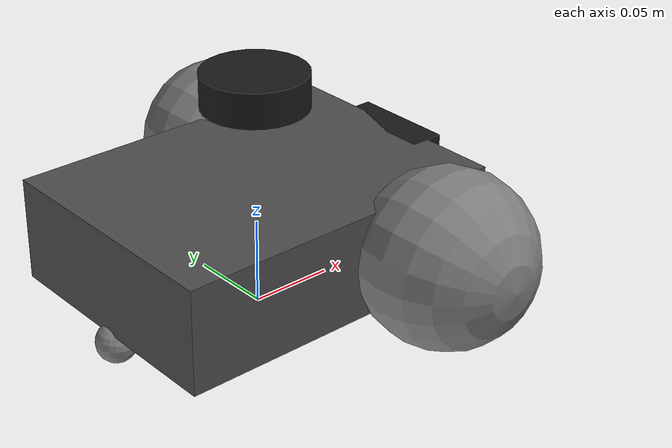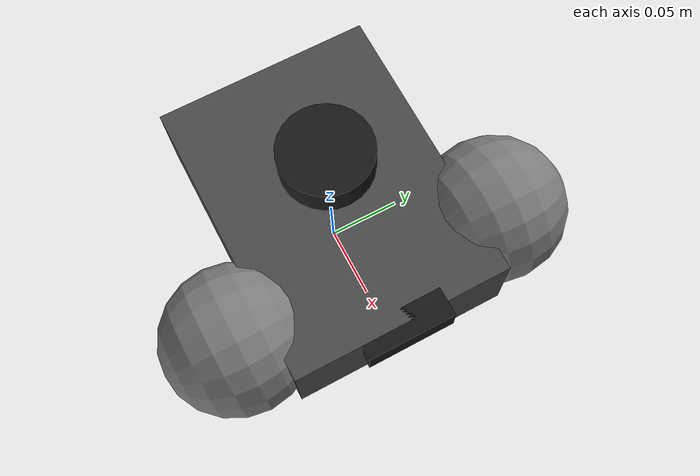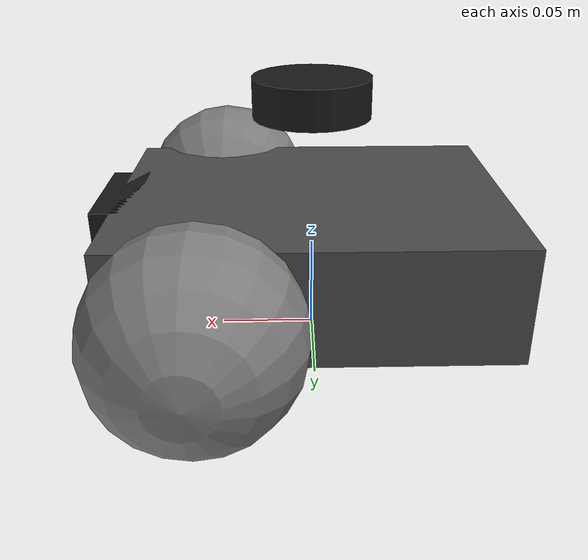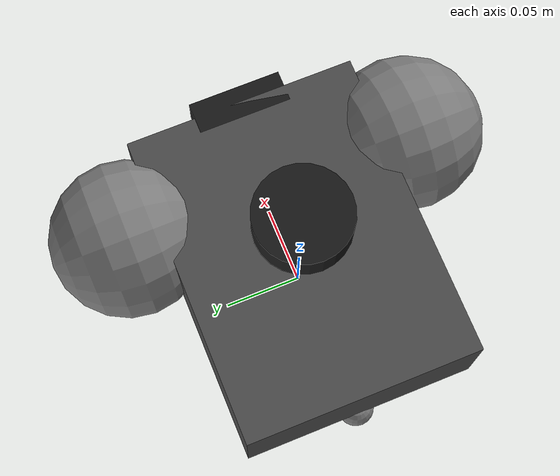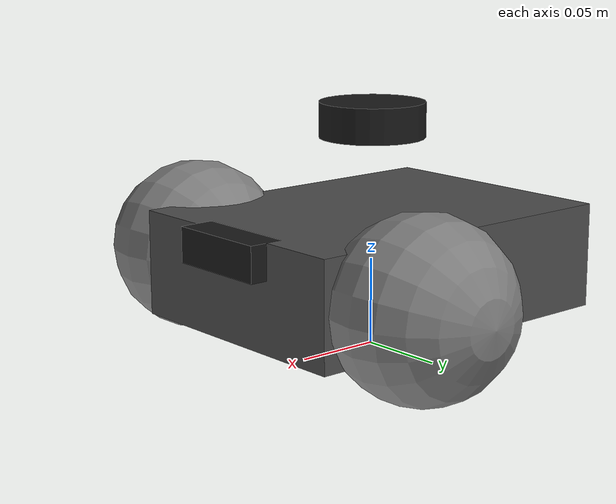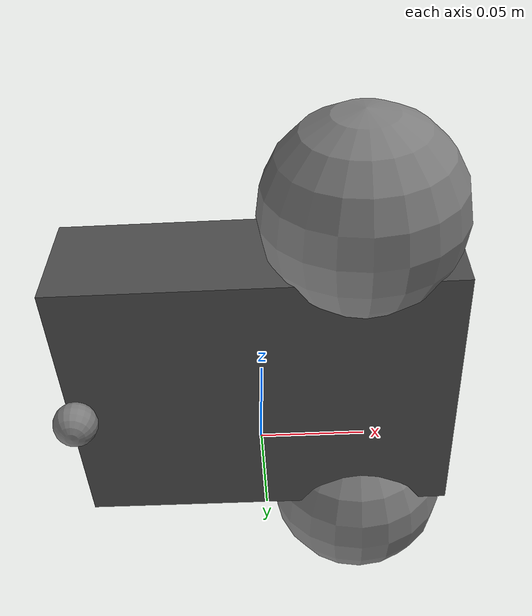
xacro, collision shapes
<?xml version="1.0"?>
<robot name="puzzlebot" xmlns:xacro="http://ros.org/wiki/xacro">

  <!-- Arguments -->
  <xacro:arg name="is_ignition" default="true"/>
  <xacro:arg name="is_sim" default="true"/>

  <!-- Include Gazebo plugins -->
  <xacro:include filename="$(find description)/urdf/puzzlebot_gazebo.xacro" />

  <!-- Include ros2_control -->
  <xacro:include filename="$(find description)/urdf/puzzlebot_ros2_control.xacro" />

  <!-- ==================== PROPERTIES ==================== -->
  <xacro:property name="wheel_radius" value="0.05"/>
  <xacro:property name="wheel_separation" value="0.19"/>
  <xacro:property name="base_mass" value="1.0"/>
  <xacro:property name="wheel_mass" value="0.1"/>
  <xacro:property name="caster_mass" value="0.01"/>

  <!-- Inertia macros -->
  <xacro:macro name="cylinder_inertia" params="m r h">
    <inertial>
      <mass value="${m}"/>
      <inertia ixx="${m*(3*r*r+h*h)/12}" ixy="0.0" ixz="0.0"
               iyy="${m*(3*r*r+h*h)/12}" iyz="0.0"
               izz="${m*r*r/2}"/>
    </inertial>
  </xacro:macro>

  <xacro:macro name="box_inertia" params="m x y z">
    <inertial>
      <mass value="${m}"/>
      <inertia ixx="${m*(y*y+z*z)/12}" ixy="0.0" ixz="0.0"
               iyy="${m*(x*x+z*z)/12}" iyz="0.0"
               izz="${m*(x*x+y*y)/12}"/>
    </inertial>
  </xacro:macro>

  <xacro:macro name="sphere_inertia" params="m r">
    <inertial>
      <mass value="${m}"/>
      <inertia ixx="${2*m*r*r/5}" ixy="0.0" ixz="0.0"
               iyy="${2*m*r*r/5}" iyz="0.0"
               izz="${2*m*r*r/5}"/>
    </inertial>
  </xacro:macro>

  <!-- ==================== LINKS ==================== -->

  <!-- base_footprint: ground-level reference frame -->
  <link name="base_footprint"/>

  <!-- base_link: robot centre, raised above base_footprint -->
  <link name="base_link">
    <xacro:box_inertia m="${base_mass}" x="0.2" y="0.15" z="0.06"/>
    <visual>
      <geometry>
        <mesh filename="package://description/meshes/Puzzlebot_Jetson_Lidar_Edition_Base.stl"/>
      </geometry>
      <material name="dark_grey">
        <color rgba="0.3 0.3 0.3 1.0"/>
      </material>
    </visual>
    <collision>
      <geometry>
        <box size="0.2 0.15 0.06"/>
      </geometry>
    </collision>
  </link>

  <!-- Right wheel -->
  <link name="wheel_right_link">
    <xacro:cylinder_inertia m="${wheel_mass}" r="${wheel_radius}" h="0.02"/>
    <visual>
      <origin xyz="0 0 0" rpy="-1.5708 0 0"/>
      <geometry>
        <mesh filename="package://description/meshes/Puzzlebot_Wheel.stl"/>
      </geometry>
      <material name="grey">
        <color rgba="0.5 0.5 0.5 1.0"/>
      </material>
    </visual>
    <collision>
      <origin xyz="0 0 0" rpy="1.5708 0 0"/>
      <geometry>
        <sphere radius="${wheel_radius}"/>
      </geometry>
    </collision>
  </link>

  <!-- Left wheel -->
  <link name="wheel_left_link">
    <xacro:cylinder_inertia m="${wheel_mass}" r="${wheel_radius}" h="0.02"/>
    <visual>
      <origin xyz="0 0 0" rpy="1.5708 0 0"/>
      <geometry>
        <mesh filename="package://description/meshes/Puzzlebot_Wheel.stl"/>
      </geometry>
      <material name="grey">
        <color rgba="0.5 0.5 0.5 1.0"/>
      </material>
    </visual>
    <collision>
      <origin xyz="0 0 0" rpy="1.5708 0 0"/>
      <geometry>
        <sphere radius="${wheel_radius}"/>
      </geometry>
    </collision>
  </link>

  <!-- Caster wheel -->
  <!-- Link origin is at the bracket mount point.
       Ball center is +0.0057m above origin (from mesh analysis),
       ball radius is 0.0115m. Collision sphere is offset to ball center. -->
  <link name="caster_link">
    <xacro:sphere_inertia m="${caster_mass}" r="0.0115"/>
    <visual>
      <geometry>
        <mesh filename="package://description/meshes/Puzzlebot_Caster_Wheel.stl"/>
      </geometry>
      <material name="grey">
        <color rgba="0.5 0.5 0.5 1.0"/>
      </material>
    </visual>
    <collision>
      <origin xyz="0 0 0.0057" rpy="0 0 0"/>
      <geometry>
        <sphere radius="0.0115"/>
      </geometry>
    </collision>
  </link>

  <!-- Lidar base link -->
  <link name="lidar_link">
    <inertial>
      <mass value="0.05"/>
      <inertia ixx="1e-6" ixy="0" ixz="0" iyy="1e-6" iyz="0" izz="1e-6"/>
    </inertial>
    <visual>
      <geometry>
        <cylinder radius="0.03" length="0.02"/>
      </geometry>
      <material name="black">
        <color rgba="0.1 0.1 0.1 1.0"/>
      </material>
    </visual>
    <collision>
      <geometry>
        <cylinder radius="0.03" length="0.02"/>
      </geometry>
    </collision>
  </link>

  <!-- Camera base link -->
  <link name="camera_link">
    <inertial>
      <mass value="0.02"/>
      <inertia ixx="1e-6" ixy="0" ixz="0" iyy="1e-6" iyz="0" izz="1e-6"/>
    </inertial>
    <visual>
      <geometry>
        <box size="0.02 0.06 0.02"/>
      </geometry>
      <material name="black">
        <color rgba="0.1 0.1 0.1 1.0"/>
      </material>
    </visual>
    <collision>
      <geometry>
        <box size="0.02 0.06 0.02"/>
      </geometry>
    </collision>
  </link>

  <!-- IMU link -->
  <link name="imu_link">
    <inertial>
      <mass value="0.01"/>
      <inertia ixx="1e-7" ixy="0" ixz="0" iyy="1e-7" iyz="0" izz="1e-7"/>
    </inertial>
  </link>

  <!-- ==================== JOINTS ==================== -->

  <!-- base_footprint -> base_link -->
  <joint name="base_joint" type="fixed">
    <parent link="base_footprint"/>
    <child link="base_link"/>
    <origin xyz="0.0 0.0 0.05" rpy="0.0 0.0 0.0"/>
  </joint>

  <!-- base_link -> wheel_right_link -->
  <joint name="wheel_right_joint" type="continuous">
    <parent link="base_link"/>
    <child link="wheel_right_link"/>
    <origin xyz="0.052 -0.095 0.0" rpy="0.0 0.0 0.0"/>
    <axis xyz="0 1 0"/>
  </joint>

  <!-- base_link -> wheel_left_link -->
  <joint name="wheel_left_joint" type="continuous">
    <parent link="base_link"/>
    <child link="wheel_left_link"/>
    <origin xyz="0.052 0.095 0.0" rpy="0.0 0.0 0.0"/>
    <axis xyz="0 1 0"/>
  </joint>

  <!-- base_link -> caster_link -->
  <!-- z=-0.0442: places ball bottom (mesh z_min=-0.0058) at world z=0 when
       base_link is at z=0.05 and drive wheels (r=0.05) rest on the ground. -->
  <joint name="caster_joint" type="fixed">
    <parent link="base_link"/>
    <child link="caster_link"/>
    <origin xyz="-0.095 0.0 -0.0432" rpy="0.0 0.0 0.0"/>
  </joint>

  <!-- base_link -> lidar_link -->
  <joint name="lidar_joint" type="fixed">
    <parent link="base_link"/>
    <child link="lidar_link"/>
    <origin xyz="0.0 0.0 0.08" rpy="0.0 0.0 0.0"/>
  </joint>

  <!-- base_link -> camera_link -->
  <joint name="camera_joint" type="fixed">
    <parent link="base_link"/>
    <child link="camera_link"/>
    <origin xyz="0.1 0.0 0.02" rpy="0.0 0.0 0.0"/>
  </joint>

  <!-- base_link -> imu_link -->
  <joint name="imu_joint" type="fixed">
    <parent link="base_link"/>
    <child link="imu_link"/>
    <origin xyz="0.0 0.0 0.04" rpy="0.0 0.0 0.0"/>
  </joint>

  <!-- Materials -->
  <material name="dark_grey">
    <color rgba="0.3 0.3 0.3 1.0"/>
  </material>
  <material name="grey">
    <color rgba="0.5 0.5 0.5 1.0"/>
  </material>
  <material name="black">
    <color rgba="0.1 0.1 0.1 1.0"/>
  </material>

</robot>
